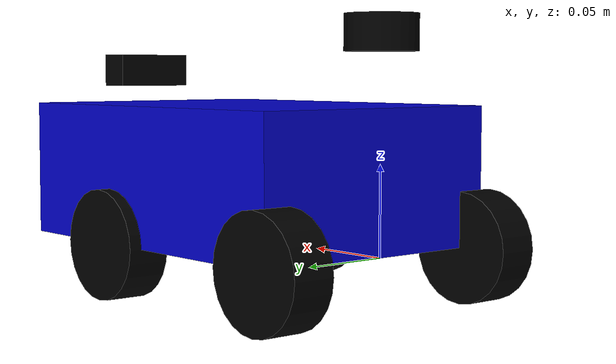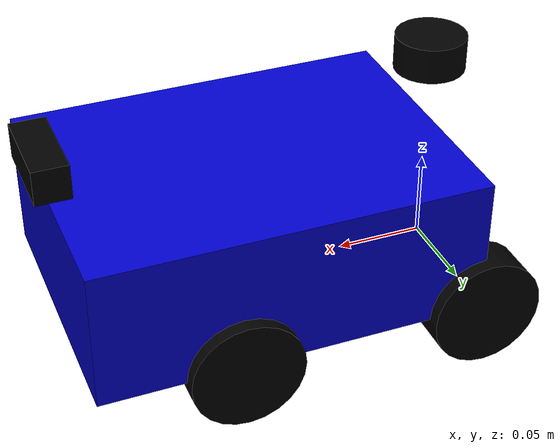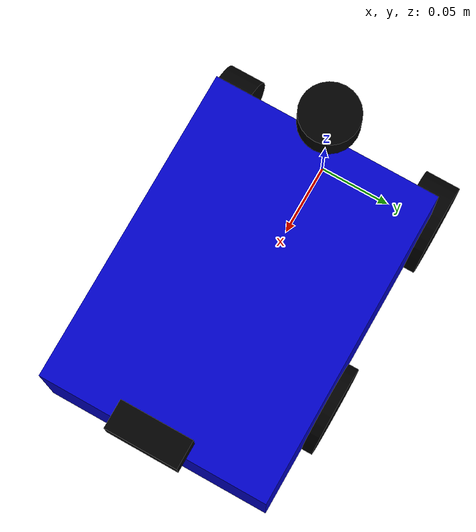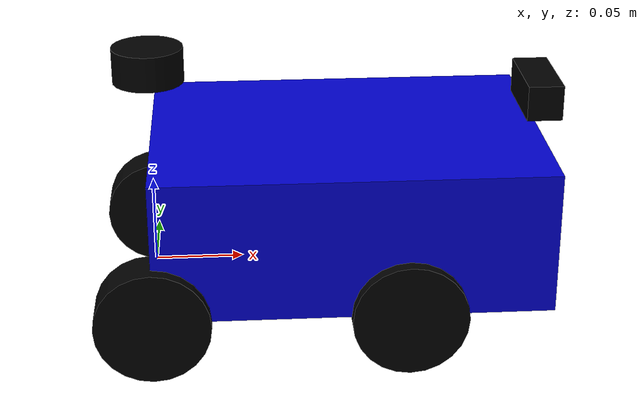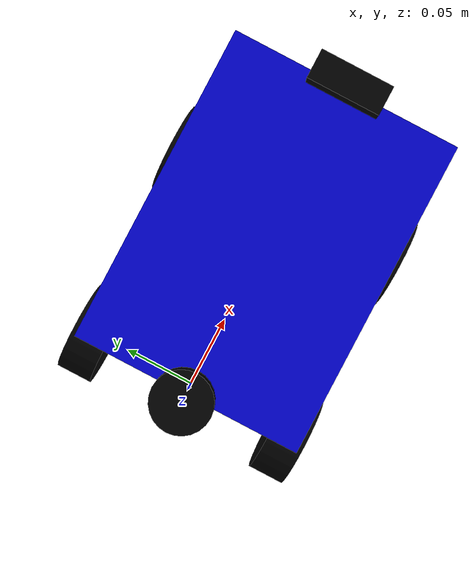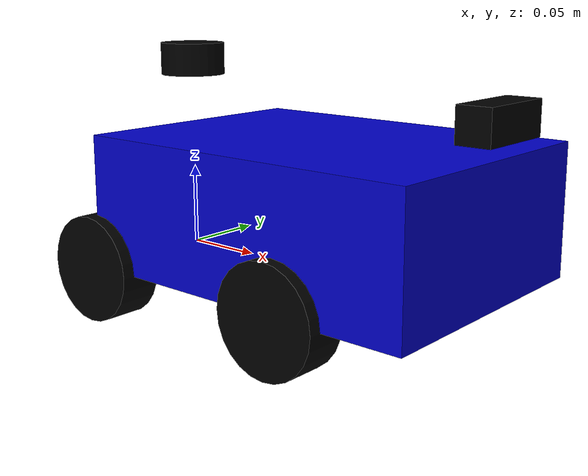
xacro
<?xml version="1.0" ?>
<robot name="risabot" xmlns:xacro="http://ros.org/wiki/xacro">

  <!-- Physical dimensions -->
  <xacro:property name="chassis_mass" value="1.5"/>
  <xacro:property name="chassis_length" value="0.22"/>
  <xacro:property name="chassis_width" value="0.16"/>
  <xacro:property name="chassis_height" value="0.08"/>

  <xacro:property name="wheel_mass" value="0.1"/>
  <xacro:property name="wheel_radius" value="0.032"/>
  <xacro:property name="wheel_thickness" value="0.025"/>

  <xacro:property name="wheelbase" value="0.14"/>
  <xacro:property name="track_width" value="0.15"/>

  <!-- Materials -->
  <material name="blue"><color rgba="0 0 0.8 1"/></material>
  <material name="black"><color rgba="0 0 0 1"/></material>
  <material name="grey"><color rgba="0.5 0.5 0.5 1"/></material>

  <!-- Base Link -->
  <link name="base_link">
    <visual>
      <origin xyz="${chassis_length/2} 0 ${chassis_height/2}" rpy="0 0 0"/>
      <geometry>
        <box size="${chassis_length} ${chassis_width} ${chassis_height}"/>
      </geometry>
      <material name="blue"/>
    </visual>
    <collision>
      <origin xyz="${chassis_length/2} 0 ${chassis_height/2}" rpy="0 0 0"/>
      <geometry>
        <box size="${chassis_length} ${chassis_width} ${chassis_height}"/>
      </geometry>
    </collision>
    <inertial>
      <origin xyz="${chassis_length/2} 0 ${chassis_height/2}" rpy="0 0 0"/>
      <mass value="${chassis_mass}"/>
      <inertia ixx="${(1/12)*chassis_mass*(chassis_width*chassis_width+chassis_height*chassis_height)}" ixy="0.0" ixz="0.0"
               iyy="${(1/12)*chassis_mass*(chassis_length*chassis_length+chassis_height*chassis_height)}" iyz="0.0"
               izz="${(1/12)*chassis_mass*(chassis_length*chassis_length+chassis_width*chassis_width)}"/>
    </inertial>
  </link>

  <!-- Footprint -->
  <link name="base_footprint"/>
  <joint name="base_footprint_joint" type="fixed">
    <parent link="base_link"/>
    <child link="base_footprint"/>
    <origin xyz="0 0 -${wheel_radius}" rpy="0 0 0"/>
  </joint>

  <!-- Wheels -->
  <xacro:macro name="wheel" params="prefix x_pos y_pos">
    <link name="${prefix}_wheel">
      <visual>
        <origin xyz="0 0 0" rpy="${pi/2} 0 0"/>
        <geometry><cylinder radius="${wheel_radius}" length="${wheel_thickness}"/></geometry>
        <material name="black"/>
      </visual>
      <collision>
        <origin xyz="0 0 0" rpy="${pi/2} 0 0"/>
        <geometry><cylinder radius="${wheel_radius}" length="${wheel_thickness}"/></geometry>
      </collision>
      <inertial>
        <origin xyz="0 0 0" rpy="${pi/2} 0 0"/>
        <mass value="${wheel_mass}"/>
        <inertia ixx="${(1/12)*wheel_mass*(3*wheel_radius*wheel_radius+wheel_thickness*wheel_thickness)}" ixy="0" ixz="0"
                 iyy="${(1/12)*wheel_mass*(3*wheel_radius*wheel_radius+wheel_thickness*wheel_thickness)}" iyz="0"
                 izz="${(1/2)*wheel_mass*(wheel_radius*wheel_radius)}"/>
      </inertial>
    </link>
  </xacro:macro>

  <xacro:wheel prefix="rear_left" x_pos="0" y_pos="${track_width/2}"/>
  <xacro:wheel prefix="rear_right" x_pos="0" y_pos="-${track_width/2}"/>
  <xacro:wheel prefix="front_left" x_pos="${wheelbase}" y_pos="${track_width/2}"/>
  <xacro:wheel prefix="front_right" x_pos="${wheelbase}" y_pos="-${track_width/2}"/>

  <!-- Joints -->
  <joint name="rear_left_joint" type="continuous">
    <parent link="base_link"/>
    <child link="rear_left_wheel"/>
    <origin xyz="0 ${track_width/2} 0" rpy="0 0 0"/>
    <axis xyz="0 1 0"/>
  </joint>

  <joint name="rear_right_joint" type="continuous">
    <parent link="base_link"/>
    <child link="rear_right_wheel"/>
    <origin xyz="0 -${track_width/2} 0" rpy="0 0 0"/>
    <axis xyz="0 1 0"/>
  </joint>

  <!-- Steering Links (Front) -->
  <link name="front_left_steer">
    <inertial><mass value="0.01"/><inertia ixx="0.0001" ixy="0" ixz="0" iyy="0.0001" iyz="0" izz="0.0001"/></inertial>
  </link>
  <link name="front_right_steer">
    <inertial><mass value="0.01"/><inertia ixx="0.0001" ixy="0" ixz="0" iyy="0.0001" iyz="0" izz="0.0001"/></inertial>
  </link>

  <joint name="front_left_steer_joint" type="revolute">
    <parent link="base_link"/>
    <child link="front_left_steer"/>
    <origin xyz="${wheelbase} ${track_width/2} 0" rpy="0 0 0"/>
    <axis xyz="0 0 1"/>
    <!-- servo range limit +/- 50 degrees = 0.87 rad -->
    <limit lower="-0.87" upper="0.87" effort="10.0" velocity="10.0"/>
  </joint>

  <joint name="front_right_steer_joint" type="revolute">
    <parent link="base_link"/>
    <child link="front_right_steer"/>
    <origin xyz="${wheelbase} -${track_width/2} 0" rpy="0 0 0"/>
    <axis xyz="0 0 1"/>
    <!-- servo range limit +/- 50 degrees = 0.87 rad -->
    <limit lower="-0.87" upper="0.87" effort="10.0" velocity="10.0"/>
  </joint>

  <joint name="front_left_wheel_joint" type="continuous">
    <parent link="front_left_steer"/>
    <child link="front_left_wheel"/>
    <origin xyz="0 0 0" rpy="0 0 0"/>
    <axis xyz="0 1 0"/>
  </joint>

  <joint name="front_right_wheel_joint" type="continuous">
    <parent link="front_right_steer"/>
    <child link="front_right_wheel"/>
    <origin xyz="0 0 0" rpy="0 0 0"/>
    <axis xyz="0 1 0"/>
  </joint>

  <!-- LiDAR Frame (backward mount, 180 deg yaw offset) -->
  <link name="laser_frame">
    <visual>
      <geometry><cylinder radius="0.02" length="0.02"/></geometry>
      <material name="black"/>
    </visual>
    <inertial><mass value="0.05"/><inertia ixx="0.0001" ixy="0" ixz="0" iyy="0.0001" iyz="0" izz="0.0001"/></inertial>
  </link>
  <joint name="laser_joint" type="fixed">
    <parent link="base_link"/>
    <child link="laser_frame"/>
    <origin xyz="0 0 0.12" rpy="0 0 3.14159265"/>
  </joint>

  <!-- Camera Frame -->
  <link name="camera_link">
    <visual>
      <geometry><box size="0.02 0.05 0.02"/></geometry>
      <material name="black"/>
    </visual>
    <inertial><mass value="0.05"/><inertia ixx="0.0001" ixy="0" ixz="0" iyy="0.0001" iyz="0" izz="0.0001"/></inertial>
  </link>
  <joint name="camera_joint" type="fixed">
    <parent link="base_link"/>
    <child link="camera_link"/>
    <origin xyz="0.22 0 0.10" rpy="0 0 0"/>
  </joint>
  <!-- Optical frame for camera (Z forward, X right, Y down) -->
  <link name="camera_color_optical_frame"/>
  <joint name="camera_optical_joint" type="fixed">
    <parent link="camera_link"/>
    <child link="camera_color_optical_frame"/>
    <origin xyz="0 0 0" rpy="-${pi/2} 0 -${pi/2}"/>
  </joint>

  <!-- IMU Frame -->
  <link name="imu_link">
    <inertial><mass value="0.01"/><inertia ixx="0.0001" ixy="0" ixz="0" iyy="0.0001" iyz="0" izz="0.0001"/></inertial>
  </link>
  <joint name="imu_joint" type="fixed">
    <parent link="base_link"/>
    <child link="imu_link"/>
    <origin xyz="${chassis_length/2} 0 ${chassis_height/2}" rpy="0 0 0"/>
  </joint>

  <!-- ==================== GAZEBO PLUGINS ==================== -->

  <!-- Ackermann Drive Plugin -->
  <gazebo>
    <plugin filename="ignition-gazebo-ackermann-steering-system" name="ignition::gazebo::systems::AckermannSteering">
      <!-- Steering -->
      <left_steering_joint>front_left_steer_joint</left_steering_joint>
      <right_steering_joint>front_right_steer_joint</right_steering_joint>
      <!-- Drive -->
      <left_joint>rear_left_joint</left_joint>
      <right_joint>rear_right_joint</right_joint>
      <left_joint>front_left_wheel_joint</left_joint>
      <right_joint>front_right_wheel_joint</right_joint>

      <!-- Geometry -->
      <wheelbase>${wheelbase}</wheelbase>
      <wheel_separation>${track_width}</wheel_separation>
      <wheel_radius>${wheel_radius}</wheel_radius>

      <!-- Limits -->
      <min_velocity>-1.0</min_velocity>
      <max_velocity>1.0</max_velocity>
      <min_acceleration>-1.0</min_acceleration>
      <max_acceleration>1.0</max_acceleration>

      <!-- ROS interface -->
      <topic>/cmd_vel</topic>
      <odom_topic>/odom</odom_topic>
      <odom_publisher_frequency>20</odom_publisher_frequency>
      <frame_id>odom</frame_id>
      <child_frame_id>base_footprint</child_frame_id>
    </plugin>
  </gazebo>

  <gazebo>
    <plugin filename="ignition-gazebo-sensors-system" name="ignition::gazebo::systems::Sensors">
      <render_engine>ogre2</render_engine>
    </plugin>
  </gazebo>

  <!-- LiDAR Sensor -->
  <gazebo reference="laser_frame">
    <sensor type="gpu_lidar" name="ydlidar">
      <update_rate>10.0</update_rate>
      <topic>/scan</topic>
      <ignition_frame_id>laser_frame</ignition_frame_id>
      <ray>
        <scan>
          <horizontal>
            <samples>360</samples>
            <resolution>1</resolution>
            <min_angle>-3.14159265</min_angle>
            <max_angle>3.14159265</max_angle>
          </horizontal>
        </scan>
        <range>
          <min>0.02</min>
          <max>12.0</max>
          <resolution>0.01</resolution>
        </range>
      </ray>
      <always_on>1</always_on>
      <visualize>true</visualize>
    </sensor>
  </gazebo>

  <!-- Camera Sensor -->
  <gazebo reference="camera_link">
    <sensor type="camera" name="astra_camera">
      <update_rate>30.0</update_rate>
      <topic>/camera/color/image_raw</topic>
      <ignition_frame_id>camera_color_optical_frame</ignition_frame_id>
      <camera>
        <!-- ~60 deg horizontal FOV -->
        <horizontal_fov>1.047</horizontal_fov>
        <image>
          <width>640</width>
          <height>480</height>
          <format>R8G8B8</format>
        </image>
        <clip>
          <near>0.05</near>
          <far>8.0</far>
        </clip>
      </camera>
      <always_on>1</always_on>
      <visualize>false</visualize>
    </sensor>
  </gazebo>

  <!-- IMU Sensor -->
  <gazebo reference="imu_link">
    <sensor type="imu" name="imu_sensor">
      <update_rate>50.0</update_rate>
      <topic>/imu/data_raw</topic>
      <ignition_frame_id>imu_link</ignition_frame_id>
      <always_on>1</always_on>
    </sensor>
  </gazebo>

</robot>
